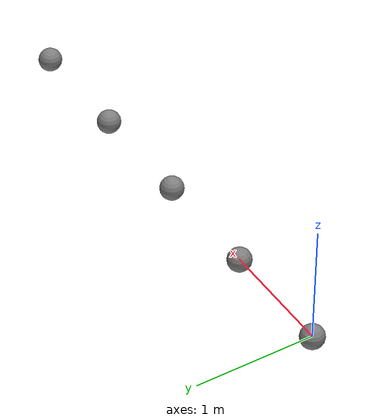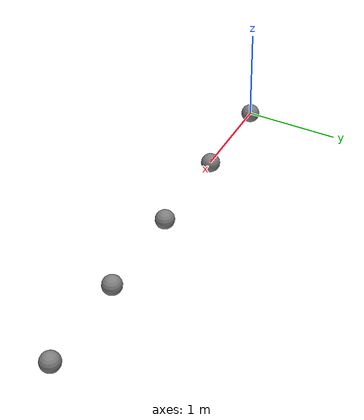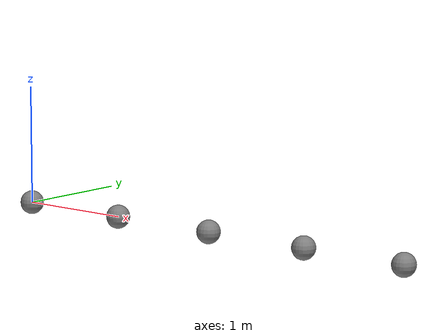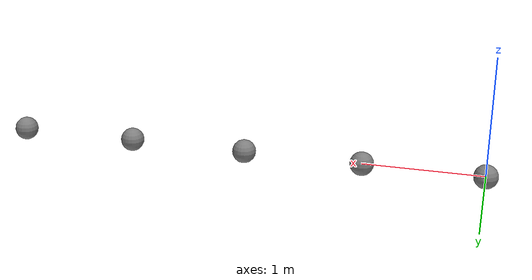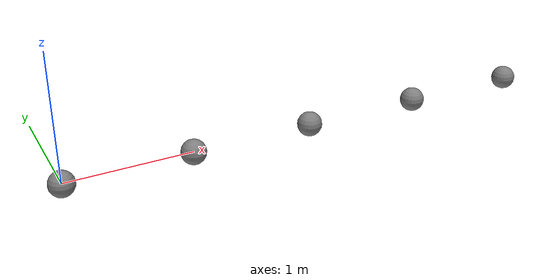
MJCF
<mujoco><option><flag sleep="enable"/></option><worldbody>
<body name="a" sleep="auto"><joint name="ja" type="hinge" axis="0 1 0"/><geom type="sphere" size="0.1"/></body>
<body name="b" pos="1 0 0" sleep="auto"><joint type="hinge" axis="0 1 0"/><geom type="sphere" size="0.1"/></body>
<body name="c" pos="2 0 0" sleep="never"><joint type="hinge" axis="0 1 0"/><geom type="sphere" size="0.1"/></body>
<body name="d" pos="3 0 0"><joint name="jd" type="hinge" axis="0 1 0"/><geom type="sphere" size="0.1"/></body>
<body name="e" pos="4 0 0"><joint name="je" type="hinge" axis="0 1 0"/><geom type="sphere" size="0.1"/></body>
</worldbody>
<tendon><fixed stiffness="1"><joint joint="jd" coef="1"/><joint joint="je" coef="1"/></fixed></tendon>
<actuator><motor joint="ja"/></actuator></mujoco>
